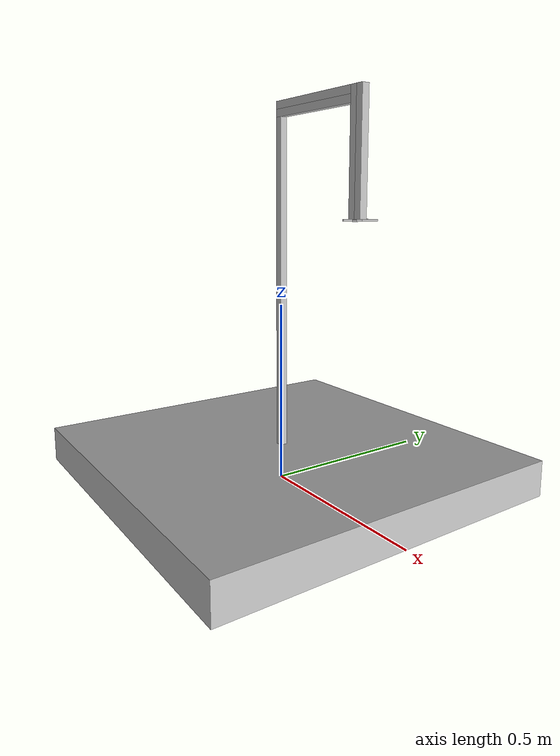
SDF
<?xml version='1.0'?>
<sdf version='1.6'>
    <model name="delta_robot">
    <pose>0 0 0.05 0 0 0</pose>

    <link name="base">
        <inertial>
            <mass>50</mass>
        </inertial>
        <collision name="base_collision">
            <pose>0 0 0 0 0 0</pose>
            <geometry>
                <box>
                    <size>1 1 0.1</size>
                </box>
            </geometry>
        </collision>
        <visual name="base_visual">
            <pose>0 0 0 0 0 0</pose>
            <geometry>
                <box>
                    <size>1 1 0.1</size>
                </box>
            </geometry>
        </visual>

        <collision name="column_collision">
            <pose>0 0 0.45 0 0 0</pose>
            <geometry>
                <box>
                    <size>0.02 0.02 1</size>
                </box>
            </geometry>
        </collision>
        <visual name="column_visual">
            <pose>0 0 0.45 0 0 0</pose>
            <geometry>
                <box>
                    <size>0.02 0.02 1</size>
                </box>
            </geometry>
        </visual>
    </link>

    <link name="forearm">
        <inertial>
            <mass>1.2</mass>
        </inertial>
        <collision name="forearm_collision">
            <pose>0.14 0 0.96 0 0 0</pose>
            <geometry>
                <box>
                    <size>0.3 0.02 0.02</size>
                </box>
            </geometry>
        </collision>
        <visual name="forearm_visual">
            <pose>0.14 0 0.96 0 0 0</pose>
            <geometry>
                <box>
                    <size>0.3 0.02 0.02</size>
                </box>
            </geometry>
        </visual>
    </link>

    <link name="arm">
        <inertial>
            <mass>1.2</mass>
        </inertial>
        <collision name="arm1_collision">
            <pose>0.14 0 0.98 0 0 0</pose>
            <geometry>
                <box>
                    <size>0.3 0.02 0.02</size>
                </box>
            </geometry>
        </collision>
        <visual name="arm1_visual">
            <pose>0.14 0 0.98 0 0 0</pose>
            <geometry>
                <box>
                    <size>0.3 0.02 0.02</size>
                </box>
            </geometry>
        </visual>
        <collision name="arm2_collision">
            <pose>0.3 0 0.84 0 0 0</pose>
            <geometry>
                <box>
                    <size>0.02 0.02 0.3</size>
                </box>
            </geometry>
        </collision>
        <visual name="arm2_visual">
            <pose>0.3 0 0.84 0 0 0</pose>
            <geometry>forearm_shaft1
                <box>
                    <size>0.02 0.02 0.3</size>
                </box>
            </geometry>
        </visual>
    </link>

    <link name="gripper">
        <inertial>
            <mass>0.064</mass>
        </inertial>
        <collision name="arm3_collision">
            <pose>0.32 0 0.84 0 0 0</pose>
            <geometry>
                <box>
                    <size>0.02 0.02 0.3</size>
                </box>
            </geometry>
        </collision>
        <visual name="arm3_visual">
            <pose>0.32 0 0.84 0 0 0</pose>
            <geometry>
                <box>
                    <size>0.02 0.02 0.3</size>
                </box>
            </geometry>
        </visual>

        <collision name="gripper1_collision">
            <pose>0.32 0 0.6875 0 0 2.09</pose>
            <geometry>
                <box>
                    <size>0.08 0.01 0.005</size>
                </box>
            </geometry>
        </collision>
        <visual name="gripper1_visual">
            <pose>0.32 0 0.6875 0 0 2.09</pose>
            <geometry>
                <box>
                    <size>0.08 0.01 0.005</size>
                </box>
            </geometry>
        </visual>

        <collision name="gripper2_collision">
            <pose>0.32 0 0.6875 0 0 -2.09</pose>
            <geometry>
                <box>
                    <size>0.08 0.01 0.005</size>
                </box>
            </geometry>
        </collision>
        <visual name="gripper2_visual">
            <pose>0.32 0 0.6875 0 0 -2.09</pose>
            <geometry>
                <box>
                    <size>0.08 0.01 0.005</size>
                </box>
            </geometry>
        </visual>
    </link>

    <joint name="theta" type="revolute">
        <pose>0 0 0.95 0 0 0</pose>
        <parent>base</parent>
        <child>forearm</child>
        <axis>
            <xyz>0 0 1</xyz>
        </axis>
    </joint>

    <joint name="radius" type="prismatic">
        <pose>0.14 0 0.97 0 0 0</pose>
        <parent>forearm</parent>
        <child>arm</child>
        <axis>
            <xyz>1 0 0</xyz>
            <initial_position>0.04</initial_position>
            <limit>
                <lower>0</lower>
                <upper>0.3</upper>
            </limit>
        </axis>
    </joint>

    <joint name="height" type="prismatic">
        <pose>0.31 0 0.84 3.14 0 0</pose>
        <parent>arm</parent>
        <child>gripper</child>
        <axis>
            <xyz>0 0 1</xyz>
            <initial_position>0.04</initial_position>
            <limit>
               <lower>0</lower>
               <upper>0.3</upper>
            </limit>
        </axis>
    </joint>
    </model>
</sdf>
